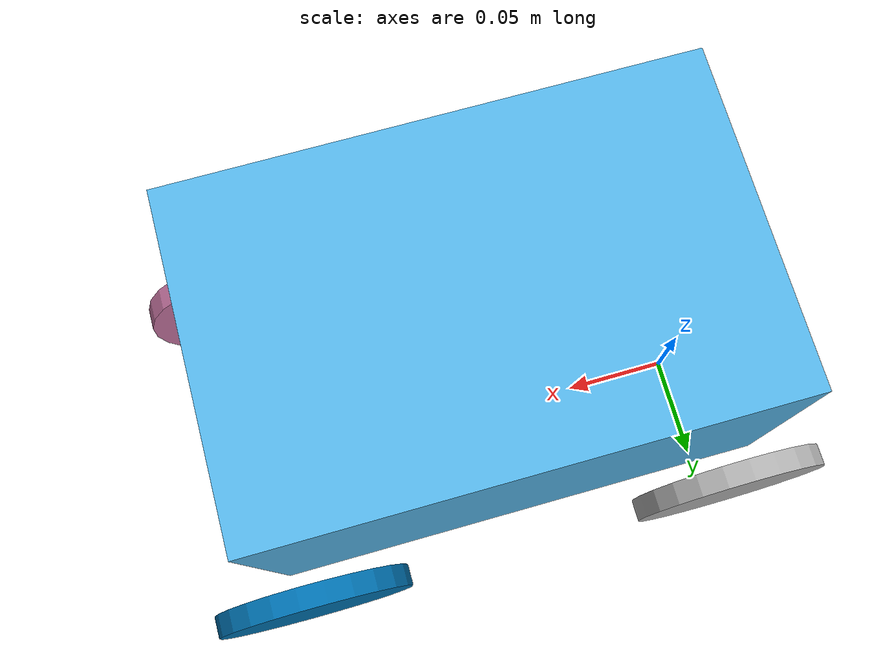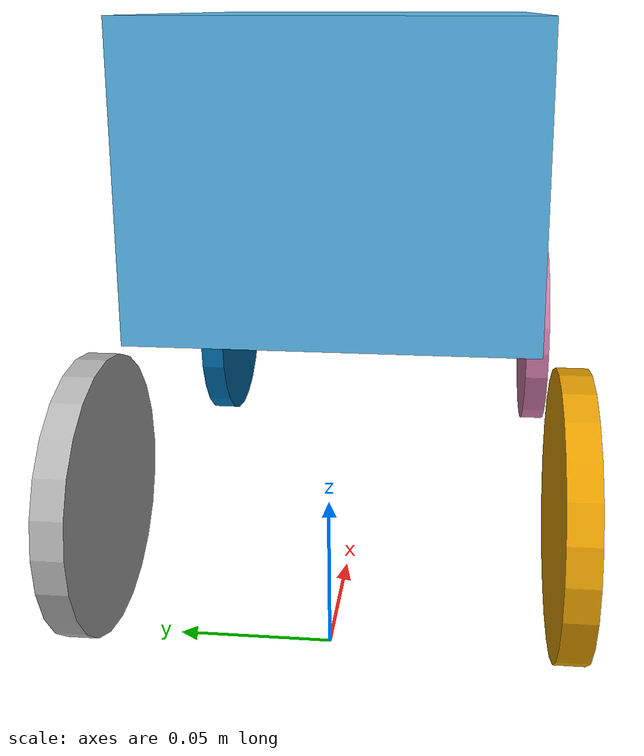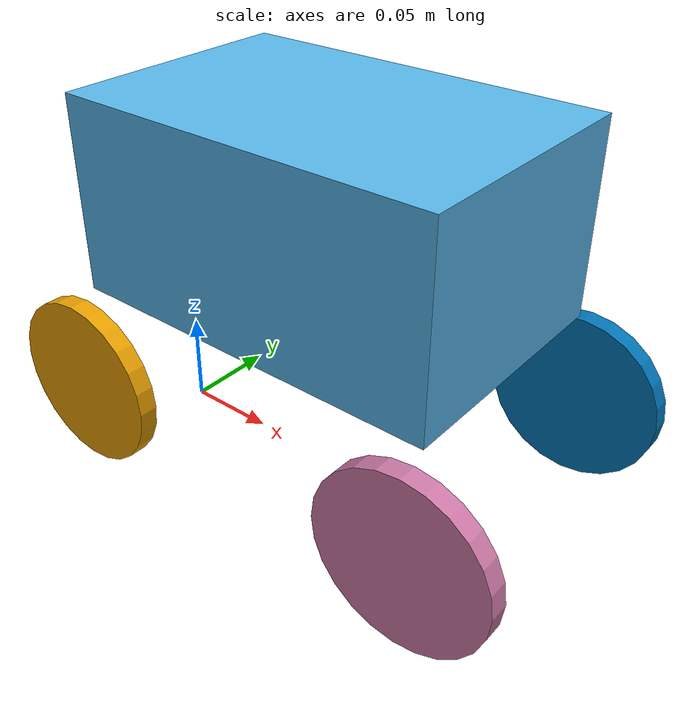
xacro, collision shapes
<?xml version="1.0"?>
<robot xmlns:xacro="http://www.ros.org/wiki/xacro"  name="fake-limo">

    <xacro:include filename="limo_mobile.xacro"/>
    <xacro:include filename="limo_mobile.gazebo"/>
    <xacro:include filename="limo_controllers.gazebo"/>
    <xacro:include filename="limo_sensor.gazebo"/>
</robot>

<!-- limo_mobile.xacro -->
<robot name="limo" xmlns:xacro="http://www.ros.org/wiki/xacro">

    <!-- Import macros -->
    <xacro:include filename="inertial_macros.xacro"/>

    <!-- Base Footprint Link -->
        <link name="base_footprint"/>

    <!-- Chassis -->
        <!-- Joint -->
        <joint name="chassis_joint" type="fixed">
            <origin xyz="0.1 0 0.15" rpy="0 0 0"/>
            <parent link="base_footprint"/>
            <child link="chassis_link"/>
        </joint>

        <!-- Link -->
        <link name="chassis_link">
            <visual name="">
                <origin xyz="0 0 -0.15" rpy="0 0 1.57" />
                <geometry>
                    <mesh filename="file://$(find limo_model)/meshes/limo_optimal.dae" scale="1 1 1"/>
                </geometry>
            </visual>
            <collision>
                <origin xyz="0 0 0" rpy="0 0 0"/>
                <geometry>
                    <box size="0.20 0.13 0.1"/>
                </geometry>
            </collision>
            <xacro:inertial_box mass="5.5" x="0.2" y="0.13" z="0.1">
                <origin xyz="0 0 0" rpy="0 0 0"/>
            </xacro:inertial_box>
        </link>

    <!-- IMU -->
        <joint name="imu_joint" type="fixed">
            <parent link="chassis_link"/>
            <child link="imu_link"/>
            <origin xyz="-0.1 0 -0.1" rpy="0 0 0"/>
        </joint>

        <link name="imu_link">
        <inertial>
            <origin xyz="0 0 0" rpy="0 0 0"/>
            <mass value="0.01"/>
            <inertia ixx="1e-5" ixy="0" ixz="0" iyy="1e-5" iyz="0" izz="1e-5"/>
        </inertial>
        </link>

    <!-- Front Left Steering -->
        <!-- Link -->
        <link name="front_left_steering_link">
            <inertial>
                <origin xyz="0 0 0" rpy="0 0 0"/>
                <mass value="0.1"/>
                <inertia ixx="0.01" ixy="0.0" ixz="0.0" iyy="0.01" iyz="0.0" izz="0.01"/>
            </inertial>
        </link>

        <!-- Joint -->
        <joint name="front_left_steering_joint" type="revolute">
            <origin xyz="0.1 0.07 -0.1" rpy="0 0 0"/>
            <parent link="chassis_link"/>
            <child link="front_left_steering_link"/>
            <axis xyz="0 0 1"/>
            <limit lower="-0.523598767" upper="0.523598767" effort="1000" velocity="1.0" />
        </joint>

    <!-- Front Left Wheel -->
        <!-- Link -->
        <link name="front_left_wheel_link">
            <visual>
              <origin xyz="0 0 0" rpy="0 0 0"/>
              <geometry>
                  <mesh filename="file://$(find limo_model)/meshes/limo_optimal_wheels.dae" scale="1 1 1"/>
              </geometry>
            </visual>
            <collision>
                <origin xyz="0 0.005 0" rpy="1.57 0 0"/>
                <geometry>
                    <cylinder radius="0.045" length="0.01"/>
                </geometry>
            </collision>
            <xacro:inertial_cylinder mass="0.1" length="0.01" radius="0.045">
                <origin xyz="0 0 0" rpy="0 0 0"/>
            </xacro:inertial_cylinder>
        </link>

        <!-- Joint -->
        <joint name="front_left_wheel_joint" type="continuous">
            <origin xyz="0 0 0" rpy="0 0 0"/>
            <parent link="front_left_steering_link"/>
            <child link="front_left_wheel_link"/>
            <axis xyz="0 1 0"/>
            <limit effort="100.0" velocity="10.0"/>
        </joint>

    <!-- Front Right Steering -->
        <!-- Link -->
        <link name="front_right_steering_link">
            <inertial>
                <origin xyz="0 0 0" rpy="0 0 0"/>
                <mass value="0.1"/>
                <inertia ixx="0.01" ixy="0.0" ixz="0.0" iyy="0.01" iyz="0.0" izz="0.01"/>
            </inertial>
        </link>

        <!-- Joint -->
        <joint name="front_right_steering_joint" type="revolute">
            <origin xyz="0.1 -0.07 -0.1" rpy="3.14159 0 0"/>
            <parent link="chassis_link"/>
            <child link="front_right_steering_link"/>
            <axis xyz="0 0 -1"/>
            <limit lower="-0.523598767" upper="0.523598767" effort="1000" velocity="1.0" />
        </joint>

    <!-- Front Right Wheel -->
        <!-- Link -->
        <link name="front_right_wheel_link">
            <visual>
              <origin xyz="0 0 0" rpy="0 0 0" />
              <geometry>
                  <mesh filename="file://$(find limo_model)/meshes/limo_optimal_wheels.dae" scale="1 1 1"/>
              </geometry>
            </visual>
            <collision>
                <origin xyz="0 0.005 0" rpy="1.57 0 0"/>
                <geometry>
                    <cylinder radius="0.045" length="0.01"/>
                </geometry>
            </collision>
            <xacro:inertial_cylinder mass="0.1" length="0.01" radius="0.045">
                <origin xyz="0 0 0" rpy="0 0 0"/>
            </xacro:inertial_cylinder>
        </link>

        <!-- Joint -->
        <joint name="front_right_wheel_joint" type="continuous">
            <origin xyz="0 0 0" rpy="0 0 0"/>
            <parent link="front_right_steering_link"/>
            <child link="front_right_wheel_link"/>
            <axis xyz="0 -1 0"/>
            <limit effort="100.0" velocity="10.0"/>
        </joint>

    <!-- Back Left Wheel -->
        <!-- Link -->
        <link name="back_left_wheel_link">
            <visual>
              <origin xyz="0 0 0" rpy="0 0 0"/>
              <geometry>
                  <mesh filename="file://$(find limo_model)/meshes/limo_optimal_wheels.dae" scale="1 1 1"/>
              </geometry>
            </visual>
            <collision>
                <origin xyz="0 0.005 0" rpy="1.57 0 0"/>
                <geometry>
                    <cylinder radius="0.045" length="0.01"/>
                </geometry>
            </collision>
            <xacro:inertial_cylinder mass="0.1" length="0.01" radius="0.045">
                <origin xyz="0 0 0" rpy="0 0 0"/>
            </xacro:inertial_cylinder>
        </link>

        <!-- Joint -->
        <joint name="back_left_wheel_joint" type="continuous">
            <origin xyz="-0.1 0.07 -0.1" rpy="0 0.0 0.0"/>
            <parent link="chassis_link"/>
            <child link="back_left_wheel_link"/>
            <axis xyz="0 1 0"/>
            <limit effort="100.0" velocity="10.0"/>
        </joint>

    <!-- Back Right Wheel -->
        <!-- Link -->
        <link name="back_right_wheel_link">
            <visual>
              <origin xyz="0 0 0" rpy="0 0 0"/>
              <geometry>
                  <mesh filename="file://$(find limo_model)/meshes/limo_optimal_wheels.dae" scale="1 1 1"/>
              </geometry>
            </visual>
            <collision>
                <origin xyz="0 0.005 0" rpy="1.57 0 0"/>
                <geometry>
                    <cylinder radius="0.045" length="0.01"/>
                </geometry>
            </collision>
            <xacro:inertial_cylinder mass="0.1" length="0.01" radius="0.045">
                <origin xyz="0 0 0" rpy="0 0 0"/>
            </xacro:inertial_cylinder>
        </link>

        <!-- Joint -->
        <joint name="back_right_wheel_joint" type="continuous">
            <origin xyz="-0.1 -0.07 -0.1" rpy="3.14159 0 0"/>
            <parent link="chassis_link"/>
            <child link="back_right_wheel_link"/>
            <axis xyz="0 -1 0"/>
            <limit effort="100.0" velocity="10.0"/>
        </joint>

</robot>
